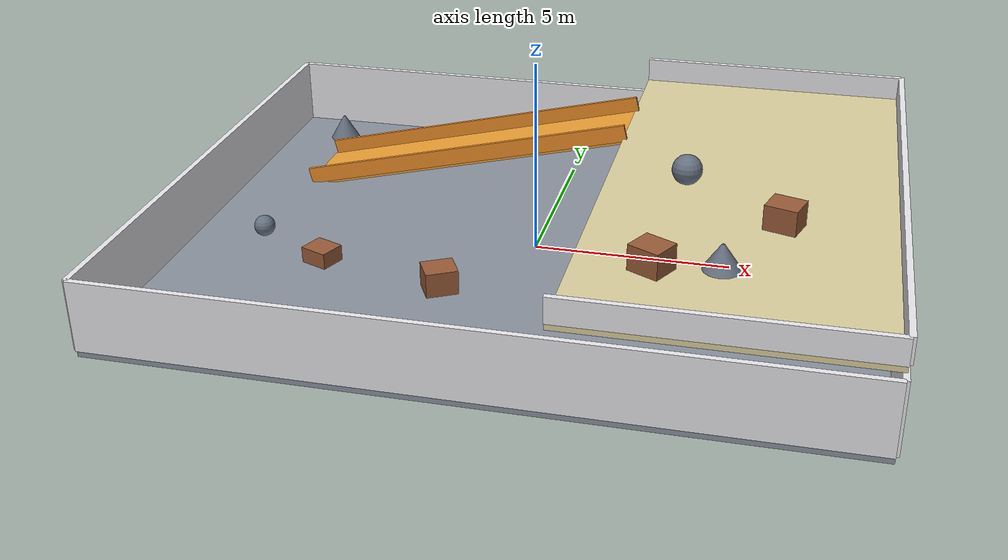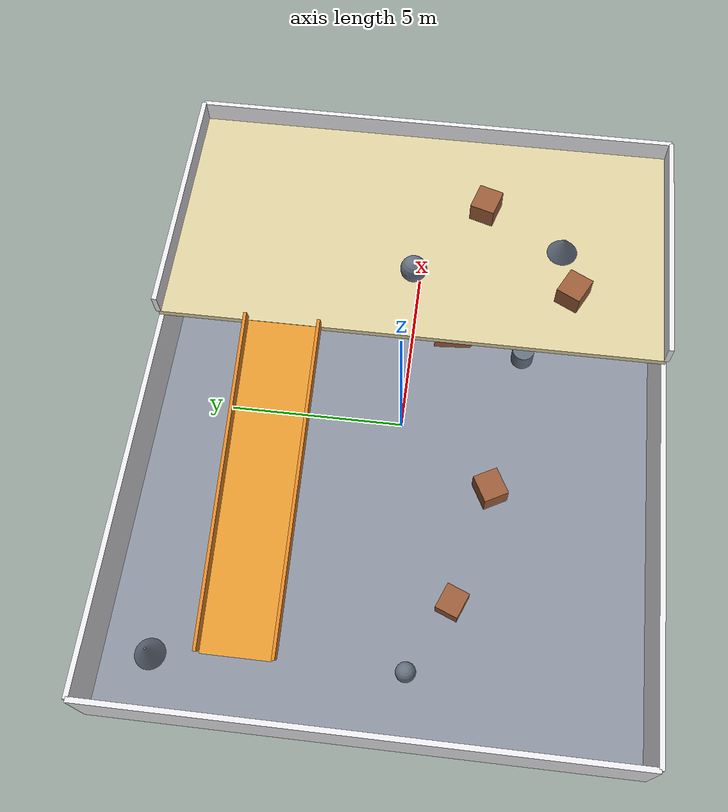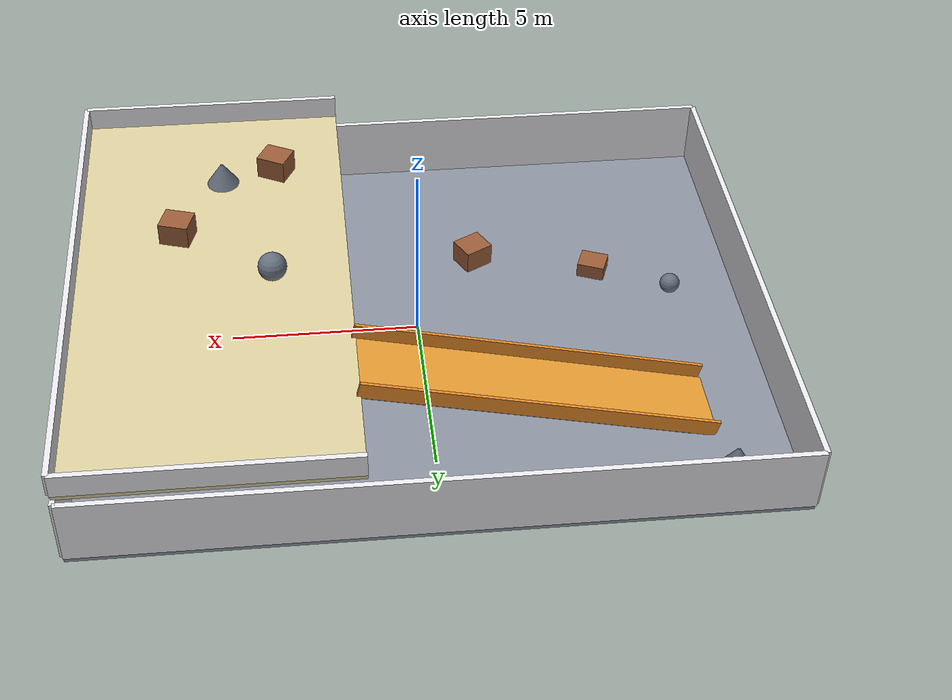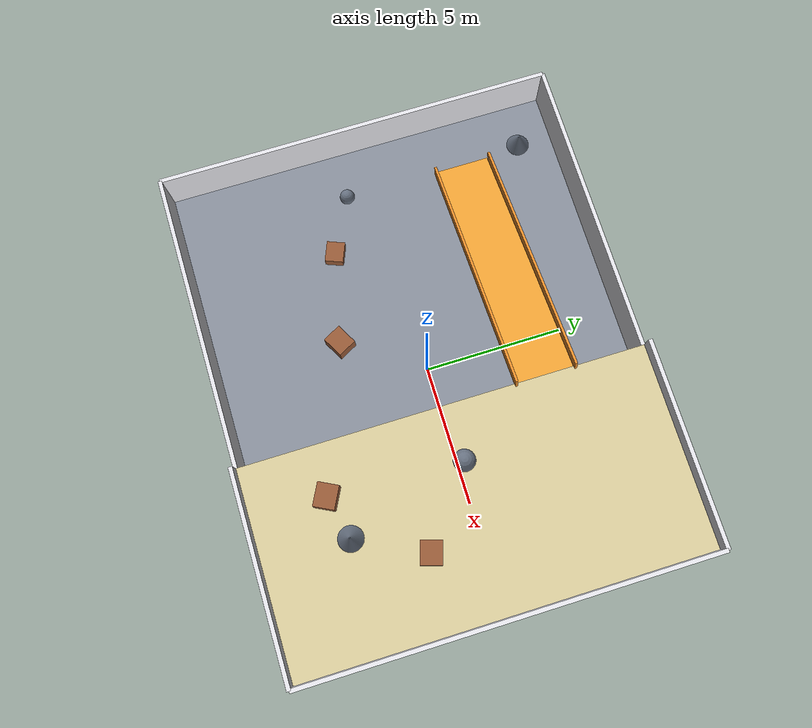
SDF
<?xml version='1.0' encoding='utf-8'?>
<sdf version="1.7">
  <world name="floor_1">
    <gravity>0 0 -9.8</gravity>
    <plugin name="gazebo_ros_state" filename="libgazebo_ros_state.so">
      <ros>
        <namespace>/gazebo</namespace>
      </ros>
    </plugin>
    <physics name="ode_physics" type="ode">
      <max_step_size>0.001</max_step_size>
      <real_time_factor>1</real_time_factor>
      <real_time_update_rate>1000</real_time_update_rate>
      <ode>
        <solver>
          <type>quick</type>
          <iters>150</iters>
          <sor>1.3</sor>
        </solver>
        <constraints>
          <cfm>0</cfm>
          <erp>0.2</erp>
          <contact_max_correcting_vel>0.2</contact_max_correcting_vel>
          <contact_surface_layer>0.001</contact_surface_layer>
        </constraints>
      </ode>
    </physics>
    <light name="sun" type="directional">
      <pose>0 0 28 0 0 0</pose>
      <diffuse>0.92 0.91 0.88 1</diffuse>
      <specular>0.18 0.18 0.16 1</specular>
      <direction>-0.35 -0.28 -0.9</direction>
      <cast_shadows>true</cast_shadows>
    </light>
    <light name="fill" type="point">
      <pose>0 0 4.5 0 0 0</pose>
      <diffuse>0.45 0.48 0.52 1</diffuse>
      <specular>0.02 0.02 0.02 1</specular>
      <cast_shadows>false</cast_shadows>
      <attenuation>
        <range>80</range>
        <constant>0.5</constant>
        <linear>0.02</linear>
      </attenuation>
    </light>
    <scene>
      <ambient>0.48 0.49 0.53 1</ambient>
      <background>0.72 0.77 0.84 1</background>
    </scene>
    <gui fullscreen="false">
      <camera name="user_camera">
        <pose>12.6 -12.96 15.3 0 0.65 2.2</pose>
        <view_controller>orbit</view_controller>
      </camera>
    </gui>
    <model name="floor_1_structure">
      <static>true</static>
      <link name="structure">
        <collision name="lower_collision">
          <pose>0 0 -0.09 0 0 0</pose>
          <geometry>
            <box>
              <size>18 14.4 0.18</size>
            </box>
          </geometry>
          <max_contacts>40</max_contacts>
          <surface>
            <friction>
              <ode>
                <mu>2</mu>
                <mu2>2</mu2>
              </ode>
            </friction>
            <contact>
              <ode>
                <kp>1e7</kp>
                <kd>1000</kd>
                <max_vel>0.1</max_vel>
                <min_depth>0.001</min_depth>
              </ode>
            </contact>
          </surface>
        </collision>
        <visual name="lower_visual">
          <pose>0 0 -0.09 0 0 0</pose>
          <geometry>
            <box>
              <size>18 14.4 0.18</size>
            </box>
          </geometry>
          <material>
            <ambient>0.54 0.57 0.62 1</ambient>
            <diffuse>0.54 0.57 0.62 1</diffuse>
          </material>
        </visual>
        <collision name="upper_collision">
          <pose>5.4 0 2.07 0 0 0</pose>
          <geometry>
            <box>
              <size>7.2 14.4 0.18</size>
            </box>
          </geometry>
          <max_contacts>40</max_contacts>
          <surface>
            <friction>
              <ode>
                <mu>2</mu>
                <mu2>2</mu2>
              </ode>
            </friction>
            <contact>
              <ode>
                <kp>1e7</kp>
                <kd>1000</kd>
                <max_vel>0.1</max_vel>
                <min_depth>0.001</min_depth>
              </ode>
            </contact>
          </surface>
        </collision>
        <visual name="upper_visual">
          <pose>5.4 0 2.07 0 0 0</pose>
          <geometry>
            <box>
              <size>7.2 14.4 0.18</size>
            </box>
          </geometry>
          <material>
            <ambient>0.86 0.81 0.62 1</ambient>
            <diffuse>0.86 0.81 0.62 1</diffuse>
          </material>
        </visual>
        <collision name="ramp_collision">
          <pose>-2.65868575 3.6 1.00121533 0 -0.234415676 0</pose>
          <geometry>
            <box>
              <size>9.29933465 1.98 0.162</size>
            </box>
          </geometry>
          <max_contacts>40</max_contacts>
          <surface>
            <friction>
              <ode>
                <mu>2</mu>
                <mu2>2</mu2>
              </ode>
            </friction>
            <contact>
              <ode>
                <kp>1e7</kp>
                <kd>1000</kd>
                <max_vel>0.1</max_vel>
                <min_depth>0.001</min_depth>
              </ode>
            </contact>
          </surface>
        </collision>
        <visual name="ramp_visual">
          <pose>-2.65868575 3.6 1.00121533 0 -0.234415676 0</pose>
          <geometry>
            <box>
              <size>9.29933465 1.98 0.162</size>
            </box>
          </geometry>
          <material>
            <ambient>0.92 0.62 0.20 1</ambient>
            <diffuse>0.92 0.62 0.20 1</diffuse>
          </material>
        </visual>
        <collision name="ramp_rail_-1_collision">
          <pose>-2.65868575 2.556 1.25321533 0 -0.234415676 0</pose>
          <geometry>
            <box>
              <size>9.29933465 0.09 0.45</size>
            </box>
          </geometry>
          <max_contacts>40</max_contacts>
          <surface>
            <friction>
              <ode>
                <mu>2</mu>
                <mu2>2</mu2>
              </ode>
            </friction>
            <contact>
              <ode>
                <kp>1e7</kp>
                <kd>1000</kd>
                <max_vel>0.1</max_vel>
                <min_depth>0.001</min_depth>
              </ode>
            </contact>
          </surface>
        </collision>
        <visual name="ramp_rail_-1_visual">
          <pose>-2.65868575 2.556 1.25321533 0 -0.234415676 0</pose>
          <geometry>
            <box>
              <size>9.29933465 0.09 0.45</size>
            </box>
          </geometry>
          <material>
            <ambient>0.92 0.55 0.16 1</ambient>
            <diffuse>0.92 0.55 0.16 1</diffuse>
          </material>
        </visual>
        <collision name="ramp_rail_1_collision">
          <pose>-2.65868575 4.644 1.25321533 0 -0.234415676 0</pose>
          <geometry>
            <box>
              <size>9.29933465 0.09 0.45</size>
            </box>
          </geometry>
          <max_contacts>40</max_contacts>
          <surface>
            <friction>
              <ode>
                <mu>2</mu>
                <mu2>2</mu2>
              </ode>
            </friction>
            <contact>
              <ode>
                <kp>1e7</kp>
                <kd>1000</kd>
                <max_vel>0.1</max_vel>
                <min_depth>0.001</min_depth>
              </ode>
            </contact>
          </surface>
        </collision>
        <visual name="ramp_rail_1_visual">
          <pose>-2.65868575 4.644 1.25321533 0 -0.234415676 0</pose>
          <geometry>
            <box>
              <size>9.29933465 0.09 0.45</size>
            </box>
          </geometry>
          <material>
            <ambient>0.92 0.55 0.16 1</ambient>
            <diffuse>0.92 0.55 0.16 1</diffuse>
          </material>
        </visual>
        <collision name="crate_0_collision">
          <pose>-1.8 -2.7 0.315 0 0 0.49804453</pose>
          <geometry>
            <box>
              <size>0.81 0.72 0.63</size>
            </box>
          </geometry>
          <max_contacts>40</max_contacts>
          <surface>
            <friction>
              <ode>
                <mu>2</mu>
                <mu2>2</mu2>
              </ode>
            </friction>
            <contact>
              <ode>
                <kp>1e7</kp>
                <kd>1000</kd>
                <max_vel>0.1</max_vel>
                <min_depth>0.001</min_depth>
              </ode>
            </contact>
          </surface>
        </collision>
        <visual name="crate_0_visual">
          <pose>-1.8 -2.7 0.315 0 0 0.49804453</pose>
          <geometry>
            <box>
              <size>0.81 0.72 0.63</size>
            </box>
          </geometry>
          <material>
            <ambient>0.60 0.36 0.22 1</ambient>
            <diffuse>0.60 0.36 0.22 1</diffuse>
          </material>
        </visual>
        <collision name="crate_1_collision">
          <pose>3.6 -4.5 2.475 0 0 -0.477698109</pose>
          <geometry>
            <box>
              <size>0.81 0.72 0.63</size>
            </box>
          </geometry>
          <max_contacts>40</max_contacts>
          <surface>
            <friction>
              <ode>
                <mu>2</mu>
                <mu2>2</mu2>
              </ode>
            </friction>
            <contact>
              <ode>
                <kp>1e7</kp>
                <kd>1000</kd>
                <max_vel>0.1</max_vel>
                <min_depth>0.001</min_depth>
              </ode>
            </contact>
          </surface>
        </collision>
        <visual name="crate_1_visual">
          <pose>3.6 -4.5 2.475 0 0 -0.477698109</pose>
          <geometry>
            <box>
              <size>0.81 0.72 0.63</size>
            </box>
          </geometry>
          <material>
            <ambient>0.60 0.36 0.22 1</ambient>
            <diffuse>0.60 0.36 0.22 1</diffuse>
          </material>
        </visual>
        <collision name="crate_2_collision">
          <pose>6.3 -1.8 2.475 0 0 -0.298869558</pose>
          <geometry>
            <box>
              <size>0.81 0.72 0.63</size>
            </box>
          </geometry>
          <max_contacts>40</max_contacts>
          <surface>
            <friction>
              <ode>
                <mu>2</mu>
                <mu2>2</mu2>
              </ode>
            </friction>
            <contact>
              <ode>
                <kp>1e7</kp>
                <kd>1000</kd>
                <max_vel>0.1</max_vel>
                <min_depth>0.001</min_depth>
              </ode>
            </contact>
          </surface>
        </collision>
        <visual name="crate_2_visual">
          <pose>6.3 -1.8 2.475 0 0 -0.298869558</pose>
          <geometry>
            <box>
              <size>0.81 0.72 0.63</size>
            </box>
          </geometry>
          <material>
            <ambient>0.60 0.36 0.22 1</ambient>
            <diffuse>0.60 0.36 0.22 1</diffuse>
          </material>
        </visual>
        <collision name="upper_rail_0_collision">
          <pose>5.4 -7.2 2.475 0 0 0</pose>
          <geometry>
            <box>
              <size>7.2 0.144 0.63</size>
            </box>
          </geometry>
          <max_contacts>40</max_contacts>
          <surface>
            <friction>
              <ode>
                <mu>2</mu>
                <mu2>2</mu2>
              </ode>
            </friction>
            <contact>
              <ode>
                <kp>1e7</kp>
                <kd>1000</kd>
                <max_vel>0.1</max_vel>
                <min_depth>0.001</min_depth>
              </ode>
            </contact>
          </surface>
        </collision>
        <visual name="upper_rail_0_visual">
          <pose>5.4 -7.2 2.475 0 0 0</pose>
          <geometry>
            <box>
              <size>7.2 0.144 0.63</size>
            </box>
          </geometry>
          <material>
            <ambient>0.91 0.91 0.93 1</ambient>
            <diffuse>0.91 0.91 0.93 1</diffuse>
          </material>
        </visual>
        <collision name="upper_rail_1_collision">
          <pose>9 0 2.475 0 0 1.57079633</pose>
          <geometry>
            <box>
              <size>14.4 0.144 0.63</size>
            </box>
          </geometry>
          <max_contacts>40</max_contacts>
          <surface>
            <friction>
              <ode>
                <mu>2</mu>
                <mu2>2</mu2>
              </ode>
            </friction>
            <contact>
              <ode>
                <kp>1e7</kp>
                <kd>1000</kd>
                <max_vel>0.1</max_vel>
                <min_depth>0.001</min_depth>
              </ode>
            </contact>
          </surface>
        </collision>
        <visual name="upper_rail_1_visual">
          <pose>9 0 2.475 0 0 1.57079633</pose>
          <geometry>
            <box>
              <size>14.4 0.144 0.63</size>
            </box>
          </geometry>
          <material>
            <ambient>0.91 0.91 0.93 1</ambient>
            <diffuse>0.91 0.91 0.93 1</diffuse>
          </material>
        </visual>
        <collision name="upper_rail_2_collision">
          <pose>5.4 7.2 2.475 0 0 3.14159265</pose>
          <geometry>
            <box>
              <size>7.2 0.144 0.63</size>
            </box>
          </geometry>
          <max_contacts>40</max_contacts>
          <surface>
            <friction>
              <ode>
                <mu>2</mu>
                <mu2>2</mu2>
              </ode>
            </friction>
            <contact>
              <ode>
                <kp>1e7</kp>
                <kd>1000</kd>
                <max_vel>0.1</max_vel>
                <min_depth>0.001</min_depth>
              </ode>
            </contact>
          </surface>
        </collision>
        <visual name="upper_rail_2_visual">
          <pose>5.4 7.2 2.475 0 0 3.14159265</pose>
          <geometry>
            <box>
              <size>7.2 0.144 0.63</size>
            </box>
          </geometry>
          <material>
            <ambient>0.91 0.91 0.93 1</ambient>
            <diffuse>0.91 0.91 0.93 1</diffuse>
          </material>
        </visual>
        <collision name="boundary_0_collision">
          <pose>0 -7.2 0.9 0 0 0</pose>
          <geometry>
            <box>
              <size>18 0.144 1.8</size>
            </box>
          </geometry>
          <max_contacts>40</max_contacts>
          <surface>
            <friction>
              <ode>
                <mu>2</mu>
                <mu2>2</mu2>
              </ode>
            </friction>
            <contact>
              <ode>
                <kp>1e7</kp>
                <kd>1000</kd>
                <max_vel>0.1</max_vel>
                <min_depth>0.001</min_depth>
              </ode>
            </contact>
          </surface>
        </collision>
        <visual name="boundary_0_visual">
          <pose>0 -7.2 0.9 0 0 0</pose>
          <geometry>
            <box>
              <size>18 0.144 1.8</size>
            </box>
          </geometry>
          <material>
            <ambient>0.91 0.91 0.93 1</ambient>
            <diffuse>0.91 0.91 0.93 1</diffuse>
          </material>
        </visual>
        <collision name="boundary_1_collision">
          <pose>9 0 0.9 0 0 1.57079633</pose>
          <geometry>
            <box>
              <size>14.4 0.144 1.8</size>
            </box>
          </geometry>
          <max_contacts>40</max_contacts>
          <surface>
            <friction>
              <ode>
                <mu>2</mu>
                <mu2>2</mu2>
              </ode>
            </friction>
            <contact>
              <ode>
                <kp>1e7</kp>
                <kd>1000</kd>
                <max_vel>0.1</max_vel>
                <min_depth>0.001</min_depth>
              </ode>
            </contact>
          </surface>
        </collision>
        <visual name="boundary_1_visual">
          <pose>9 0 0.9 0 0 1.57079633</pose>
          <geometry>
            <box>
              <size>14.4 0.144 1.8</size>
            </box>
          </geometry>
          <material>
            <ambient>0.91 0.91 0.93 1</ambient>
            <diffuse>0.91 0.91 0.93 1</diffuse>
          </material>
        </visual>
        <collision name="boundary_2_collision">
          <pose>0 7.2 0.9 0 0 3.14159265</pose>
          <geometry>
            <box>
              <size>18 0.144 1.8</size>
            </box>
          </geometry>
          <max_contacts>40</max_contacts>
          <surface>
            <friction>
              <ode>
                <mu>2</mu>
                <mu2>2</mu2>
              </ode>
            </friction>
            <contact>
              <ode>
                <kp>1e7</kp>
                <kd>1000</kd>
                <max_vel>0.1</max_vel>
                <min_depth>0.001</min_depth>
              </ode>
            </contact>
          </surface>
        </collision>
        <visual name="boundary_2_visual">
          <pose>0 7.2 0.9 0 0 3.14159265</pose>
          <geometry>
            <box>
              <size>18 0.144 1.8</size>
            </box>
          </geometry>
          <material>
            <ambient>0.91 0.91 0.93 1</ambient>
            <diffuse>0.91 0.91 0.93 1</diffuse>
          </material>
        </visual>
        <collision name="boundary_3_collision">
          <pose>-9 0 0.9 0 0 -1.57079633</pose>
          <geometry>
            <box>
              <size>14.4 0.144 1.8</size>
            </box>
          </geometry>
          <max_contacts>40</max_contacts>
          <surface>
            <friction>
              <ode>
                <mu>2</mu>
                <mu2>2</mu2>
              </ode>
            </friction>
            <contact>
              <ode>
                <kp>1e7</kp>
                <kd>1000</kd>
                <max_vel>0.1</max_vel>
                <min_depth>0.001</min_depth>
              </ode>
            </contact>
          </surface>
        </collision>
        <visual name="boundary_3_visual">
          <pose>-9 0 0.9 0 0 -1.57079633</pose>
          <geometry>
            <box>
              <size>14.4 0.144 1.8</size>
            </box>
          </geometry>
          <material>
            <ambient>0.91 0.91 0.93 1</ambient>
            <diffuse>0.91 0.91 0.93 1</diffuse>
          </material>
        </visual>
        <collision name="irregular_prop_0_collision">
          <pose>-5.13008222 -1.9419275 0.207759695 0 0 1.18724803</pose>
          <geometry>
            <box>
              <size>0.659222681 0.747307549 0.41551939</size>
            </box>
          </geometry>
          <max_contacts>40</max_contacts>
          <surface>
            <friction>
              <ode>
                <mu>2</mu>
                <mu2>2</mu2>
              </ode>
            </friction>
            <contact>
              <ode>
                <kp>1e7</kp>
                <kd>1000</kd>
                <max_vel>0.1</max_vel>
                <min_depth>0.001</min_depth>
              </ode>
            </contact>
          </surface>
        </collision>
        <visual name="irregular_prop_0_visual">
          <pose>-5.13008222 -1.9419275 0.207759695 0 0 1.18724803</pose>
          <geometry>
            <box>
              <size>0.659222681 0.747307549 0.41551939</size>
            </box>
          </geometry>
          <material>
            <ambient>0.60 0.36 0.22 1</ambient>
            <diffuse>0.60 0.36 0.22 1</diffuse>
          </material>
        </visual>
        <collision name="irregular_prop_1_collision">
          <pose>5.57776322 -1.81406556 0.222537842 0 0 -2.51313179</pose>
          <geometry>
            <cylinder>
              <radius>0.2545735564108464</radius>
              <length>0.44507568315099</length>
            </cylinder>
          </geometry>
          <max_contacts>40</max_contacts>
          <surface>
            <friction>
              <ode>
                <mu>2</mu>
                <mu2>2</mu2>
              </ode>
            </friction>
            <contact>
              <ode>
                <kp>1e7</kp>
                <kd>1000</kd>
                <max_vel>0.1</max_vel>
                <min_depth>0.001</min_depth>
              </ode>
            </contact>
          </surface>
        </collision>
        <visual name="irregular_prop_1_visual">
          <pose>5.57776322 -1.81406556 0.222537842 0 0 -2.51313179</pose>
          <geometry>
            <cylinder>
              <radius>0.2545735564108464</radius>
              <length>0.44507568315099</length>
            </cylinder>
          </geometry>
          <material>
            <ambient>0.40 0.44 0.50 1</ambient>
            <diffuse>0.40 0.44 0.50 1</diffuse>
          </material>
        </visual>
        <collision name="irregular_prop_2_collision">
          <pose>3.79961165 0.0988059609 2.5419151 0 0 1.48481726</pose>
          <geometry>
            <sphere>
              <radius>0.3819151023336239</radius>
            </sphere>
          </geometry>
          <max_contacts>40</max_contacts>
          <surface>
            <friction>
              <ode>
                <mu>2</mu>
                <mu2>2</mu2>
              </ode>
            </friction>
            <contact>
              <ode>
                <kp>1e7</kp>
                <kd>1000</kd>
                <max_vel>0.1</max_vel>
                <min_depth>0.001</min_depth>
              </ode>
            </contact>
          </surface>
        </collision>
        <visual name="irregular_prop_2_visual">
          <pose>3.79961165 0.0988059609 2.5419151 0 0 1.48481726</pose>
          <geometry>
            <sphere>
              <radius>0.3819151023336239</radius>
            </sphere>
          </geometry>
          <material>
            <ambient>0.40 0.44 0.50 1</ambient>
            <diffuse>0.40 0.44 0.50 1</diffuse>
          </material>
        </visual>
        <collision name="irregular_prop_3_collision">
          <pose>0 0 0 0 0 0</pose>
          <geometry>
            <mesh>
              <uri>3DModel/floor/surfaces/floor_1_irregular_prop_3.stl</uri>
            </mesh>
          </geometry>
          <max_contacts>40</max_contacts>
          <surface>
            <friction>
              <ode>
                <mu>8</mu>
                <mu2>8</mu2>
              </ode>
            </friction>
            <contact>
              <ode>
                <kp>1e7</kp>
                <kd>1000</kd>
                <max_vel>0.1</max_vel>
                <min_depth>0.001</min_depth>
              </ode>
            </contact>
          </surface>
        </collision>
        <visual name="irregular_prop_3_visual">
          <pose>0 0 0 0 0 0</pose>
          <geometry>
            <mesh>
              <uri>3DModel/floor/surfaces/floor_1_irregular_prop_3.stl</uri>
            </mesh>
          </geometry>
          <material>
            <ambient>0.40 0.44 0.50 1</ambient>
            <diffuse>0.40 0.44 0.50 1</diffuse>
          </material>
        </visual>
        <collision name="irregular_prop_4_collision">
          <pose>8.20883389 3.2128817 0.302373399 0 0 0.785078837</pose>
          <geometry>
            <box>
              <size>0.647090642 0.615133505 0.604746797</size>
            </box>
          </geometry>
          <max_contacts>40</max_contacts>
          <surface>
            <friction>
              <ode>
                <mu>2</mu>
                <mu2>2</mu2>
              </ode>
            </friction>
            <contact>
              <ode>
                <kp>1e7</kp>
                <kd>1000</kd>
                <max_vel>0.1</max_vel>
                <min_depth>0.001</min_depth>
              </ode>
            </contact>
          </surface>
        </collision>
        <visual name="irregular_prop_4_visual">
          <pose>8.20883389 3.2128817 0.302373399 0 0 0.785078837</pose>
          <geometry>
            <box>
              <size>0.647090642 0.615133505 0.604746797</size>
            </box>
          </geometry>
          <material>
            <ambient>0.60 0.36 0.22 1</ambient>
            <diffuse>0.60 0.36 0.22 1</diffuse>
          </material>
        </visual>
        <collision name="irregular_prop_5_collision">
          <pose>2.61164146 -3.34288419 0.280596862 0 0 -0.382307177</pose>
          <geometry>
            <cylinder>
              <radius>0.3241920036507848</radius>
              <length>0.5611937236386728</length>
            </cylinder>
          </geometry>
          <max_contacts>40</max_contacts>
          <surface>
            <friction>
              <ode>
                <mu>2</mu>
                <mu2>2</mu2>
              </ode>
            </friction>
            <contact>
              <ode>
                <kp>1e7</kp>
                <kd>1000</kd>
                <max_vel>0.1</max_vel>
                <min_depth>0.001</min_depth>
              </ode>
            </contact>
          </surface>
        </collision>
        <visual name="irregular_prop_5_visual">
          <pose>2.61164146 -3.34288419 0.280596862 0 0 -0.382307177</pose>
          <geometry>
            <cylinder>
              <radius>0.3241920036507848</radius>
              <length>0.5611937236386728</length>
            </cylinder>
          </geometry>
          <material>
            <ambient>0.40 0.44 0.50 1</ambient>
            <diffuse>0.40 0.44 0.50 1</diffuse>
          </material>
        </visual>
        <collision name="irregular_prop_6_collision">
          <pose>-7.11845426 -0.909353067 0.27341204 0 0 -0.911431863</pose>
          <geometry>
            <sphere>
              <radius>0.27341203961314553</radius>
            </sphere>
          </geometry>
          <max_contacts>40</max_contacts>
          <surface>
            <friction>
              <ode>
                <mu>2</mu>
                <mu2>2</mu2>
              </ode>
            </friction>
            <contact>
              <ode>
                <kp>1e7</kp>
                <kd>1000</kd>
                <max_vel>0.1</max_vel>
                <min_depth>0.001</min_depth>
              </ode>
            </contact>
          </surface>
        </collision>
        <visual name="irregular_prop_6_visual">
          <pose>-7.11845426 -0.909353067 0.27341204 0 0 -0.911431863</pose>
          <geometry>
            <sphere>
              <radius>0.27341203961314553</radius>
            </sphere>
          </geometry>
          <material>
            <ambient>0.40 0.44 0.50 1</ambient>
            <diffuse>0.40 0.44 0.50 1</diffuse>
          </material>
        </visual>
        <collision name="irregular_prop_7_collision">
          <pose>0 0 0 0 0 0</pose>
          <geometry>
            <mesh>
              <uri>3DModel/floor/surfaces/floor_1_irregular_prop_7.stl</uri>
            </mesh>
          </geometry>
          <max_contacts>40</max_contacts>
          <surface>
            <friction>
              <ode>
                <mu>8</mu>
                <mu2>8</mu2>
              </ode>
            </friction>
            <contact>
              <ode>
                <kp>1e7</kp>
                <kd>1000</kd>
                <max_vel>0.1</max_vel>
                <min_depth>0.001</min_depth>
              </ode>
            </contact>
          </surface>
        </collision>
        <visual name="irregular_prop_7_visual">
          <pose>0 0 0 0 0 0</pose>
          <geometry>
            <mesh>
              <uri>3DModel/floor/surfaces/floor_1_irregular_prop_7.stl</uri>
            </mesh>
          </geometry>
          <material>
            <ambient>0.40 0.44 0.50 1</ambient>
            <diffuse>0.40 0.44 0.50 1</diffuse>
          </material>
        </visual>
        <collision name="irregular_prop_8_collision">
          <pose>3.12988257 -1.20723165 0.243753404 0 0 -1.50419386</pose>
          <geometry>
            <box>
              <size>1.11200324 0.683026778 0.487506808</size>
            </box>
          </geometry>
          <max_contacts>40</max_contacts>
          <surface>
            <friction>
              <ode>
                <mu>2</mu>
                <mu2>2</mu2>
              </ode>
            </friction>
            <contact>
              <ode>
                <kp>1e7</kp>
                <kd>1000</kd>
                <max_vel>0.1</max_vel>
                <min_depth>0.001</min_depth>
              </ode>
            </contact>
          </surface>
        </collision>
        <visual name="irregular_prop_8_visual">
          <pose>3.12988257 -1.20723165 0.243753404 0 0 -1.50419386</pose>
          <geometry>
            <box>
              <size>1.11200324 0.683026778 0.487506808</size>
            </box>
          </geometry>
          <material>
            <ambient>0.60 0.36 0.22 1</ambient>
            <diffuse>0.60 0.36 0.22 1</diffuse>
          </material>
        </visual>
      </link>
    </model>
  </world>
</sdf>
